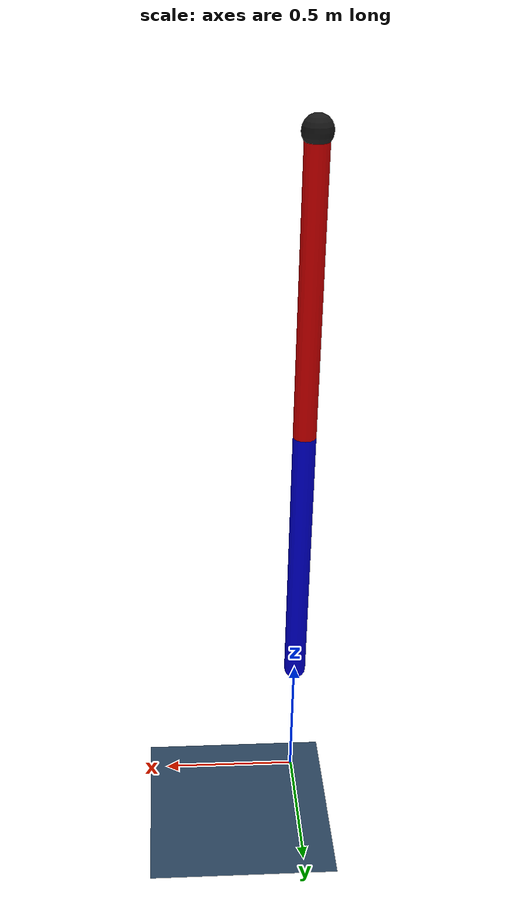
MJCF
<mujoco model="acrobot">
    <option timestep="0.002" gravity="0 0 -9.81"/>

    <visual>
        <headlight ambient=".4 .4 .4" diffuse=".8 .8 .8" specular="0.1 0.1 0.1"/>
        <map znear="0.01"/>
    </visual>

    <asset>
        <texture name="grid" type="2d" builtin="checker" rgb1=".1 .2 .3" rgb2=".2 .3 .4" width="300" height="300" mark="edge" markrgb=".2 .3 .4"/>
        <material name="grid" texture="grid" texrepeat="2 2" texuniform="true"/>
    </asset>

    <worldbody>
        <geom name="floor" type="plane" size="5 5 0.1" material="grid"/>
        <light pos="0 0 3" dir="0 0 -1" diffuse="1 1 1"/>

        <body name="base" pos="0 0 2.5">
            <geom type="sphere" size="0.05" rgba=".1 .1 .1 1"/>
            <body name="link1" pos="0 0 0">
                <joint name="joint1" type="hinge" axis="0 1 0" pos="0 0 0" damping="0.1"/>
                <geom name="l1" type="capsule" fromto="0 0 0 0 0 -1" size="0.04" rgba="1 0 0 1"/>
                <body name="link2" pos="0 0 -1">
                    <joint name="joint2" type="hinge" axis="0 1 0" pos="0 0 0" damping="0.1"/>
                    <geom name="l2" type="capsule" fromto="0 0 0 0 0 -1" size="0.04" rgba="0 0 1 1"/>
                </body>
            </body>
        </body>
    </worldbody>

    <actuator>
        <motor joint="joint2" ctrlrange="-10 10" ctrllimited="true"/>
    </actuator>
</mujoco>
